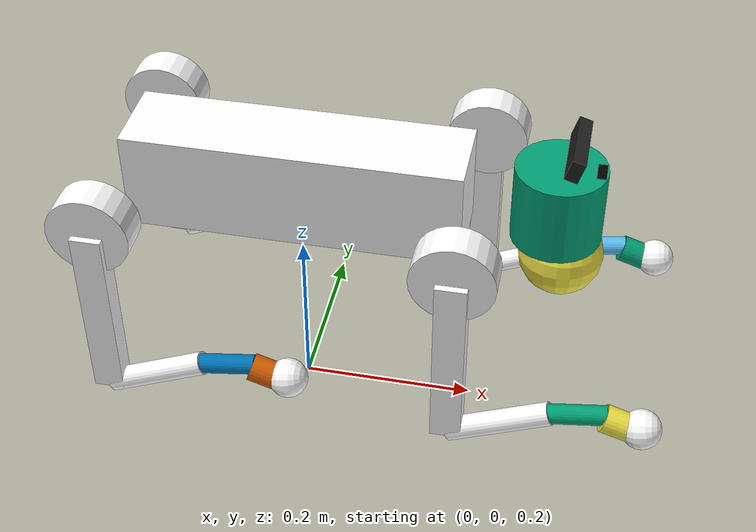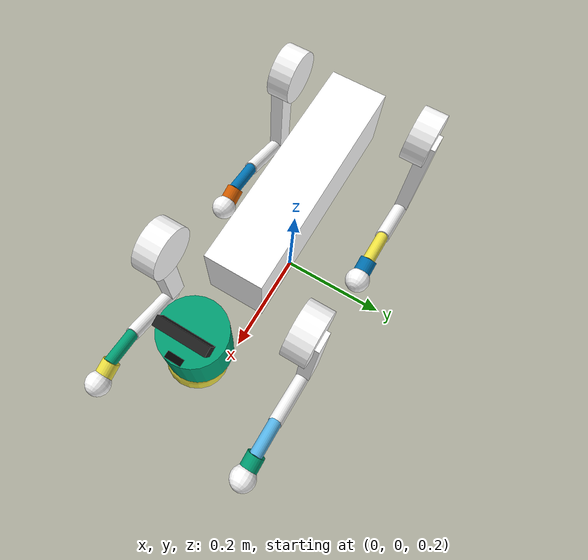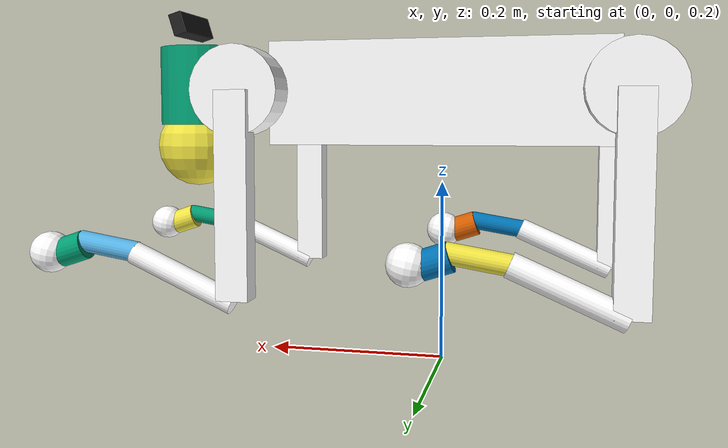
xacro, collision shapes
<?xml version="1.0" encoding="utf-8"?>
<robot name="go2_description" xmlns:xacro="http://ros.org/wiki/xacro">
    <xacro:arg name="namespace" default="" />

    <link name="base_link"></link>

    <joint name="base_joint_link" type="fixed">
        <parent link="base_link"/>
        <child link="base" />
        <origin xyz="0 0 0.5" rpy="0 0 0"/>
    </joint>

  <link
    name="base">
    <inertial>
      <origin
        xyz="0.021112 0 -0.005366"
        rpy="0 0 0" />
      <mass
        value="6.921" />
      <inertia
        ixx="0.02448"
        ixy="0.00012166"
        ixz="0.0014849"
        iyy="0.098077"
        iyz="-3.12E-05"
        izz="0.107" />
    </inertial>
    <visual>
      <origin
        xyz="0 0 0"
        rpy="0 0 0" />
      <geometry>
        <mesh
          filename="package://go2_description/dae/base.dae" />
      </geometry>
      <material
        name="">
        <color
          rgba="1 1 1 1" />
      </material>
    </visual>
    <collision>
      <origin rpy="0 0 0" xyz="0 0 0" />
      <geometry>
        <box size="0.3762 0.0935 0.114" />
      </geometry>
    </collision>
  </link>
  <link
    name="Head_upper">
    <inertial>
      <origin
        xyz="0 0 0"
        rpy="0 0 0" />
      <mass
        value="0.001" />
      <inertia
        ixx="9.6e-06"
        ixy="0"
        ixz="0"
        iyy="9.6e-06"
        iyz="0"
        izz="9.6e-06" />
    </inertial>
    <collision>
      <origin
        xyz="0 0 0"
        rpy="0 0 0" />
      <geometry>
        <cylinder radius="0.05" length="0.09" />
      </geometry>
    </collision>
  </link>
  <joint
    name="Head_upper_joint"
    type="fixed" dont_collapse="true">
    <origin
      xyz="0.285 0 0.01"
      rpy="0 0 0" />
    <parent
      link="base" />
    <child
      link="Head_upper" />
    <axis
      xyz="0 0 0" />
  </joint>
  <link
    name="Head_lower">
    <inertial>
      <origin
        xyz="0 0 0"
        rpy="0 0 0" />
      <mass
        value="0.001" />
      <inertia
        ixx="9.6e-06"
        ixy="0"
        ixz="0"
        iyy="9.6e-06"
        iyz="0"
        izz="9.6e-06" />
    </inertial>
    <collision>
      <origin
        xyz="0 0 0"
        rpy="0 0 0" />
      <geometry>
        <sphere radius="0.047" />
      </geometry>
    </collision>
  </link>
  <joint
    name="Head_lower_joint"
    type="fixed" dont_collapse="true">
    <origin
      xyz="0.008 0 -0.07"
      rpy="0 0 0" />
    <parent
      link="Head_upper" />
    <child
      link="Head_lower" />
    <axis
      xyz="0 0 0" />
  </joint>
  <link
    name="FL_hip">
    <inertial>
      <origin
        xyz="-0.0054 0.00194 -0.000105"
        rpy="0 0 0" />
      <mass
        value="0.678" />
      <inertia
        ixx="0.00048"
        ixy="-3.01E-06"
        ixz="1.11E-06"
        iyy="0.000884"
        iyz="-1.42E-06"
        izz="0.000596" />
    </inertial>
    <visual>
      <origin
        xyz="0 0 0"
        rpy="0 0 0" />
      <geometry>
        <mesh
          filename="package://go2_description/dae/hip.dae" />
      </geometry>
      <material
        name="">
        <color
          rgba="1 1 1 1" />
      </material>
    </visual>
    <collision>
      <origin rpy="1.5707963267948966 0 0" xyz="0 0.08 0" />
      <geometry>
        <cylinder length="0.04" radius="0.046" />
      </geometry>
    </collision>
  </link>
  <joint
    name="FL_hip_joint"
    type="revolute">
    <origin
      xyz="0.1934 0.0465 0"
      rpy="0 0 0" />
    <parent
      link="base" />
    <child
      link="FL_hip" />
    <axis
      xyz="1 0 0" />
    <limit
      lower="-1.0472"
      upper="1.0472"
      effort="23.7"
      velocity="30.1" />
  </joint>
  <link name="FL_hip_rotor">
    <inertial>
      <origin rpy="0 0 0" xyz="0.0 0.0 0.0"/>
      <mass value="0.089"/>
      <inertia ixx="0.000111842" ixy="0.0" ixz="0.0" iyy="0.000059647" iyz="0.0" izz="0.000059647"/>
    </inertial>
  </link>
  <joint name="FL_hip_rotor_joint" type="fixed">
    <origin rpy="0 0 0" xyz="0.11215 0.04675 0"/>
    <parent link="base"/>
    <child link="FL_hip_rotor"/>
  </joint>
  <link
    name="FL_thigh">
    <inertial>
      <origin
        xyz="-0.00374 -0.0223 -0.0327"
        rpy="0 0 0" />
      <mass
        value="1.152" />
      <inertia
        ixx="0.00584"
        ixy="8.72E-05"
        ixz="-0.000289"
        iyy="0.0058"
        iyz="0.000808"
        izz="0.00103" />
    </inertial>
    <visual>
      <origin
        xyz="0 0 0"
        rpy="0 0 0" />
      <geometry>
        <mesh
          filename="package://go2_description/dae/thigh.dae" />
      </geometry>
      <material
        name="">
        <color
          rgba="1 1 1 1" />
      </material>
    </visual>
    <collision>
      <origin rpy="0 1.5707963267948966 0" xyz="0 0 -0.1065" />
      <geometry>
        <box size="0.213 0.0245 0.034" />
      </geometry>
    </collision>
  </link>
  <joint
    name="FL_thigh_joint"
    type="revolute">
    <origin
      xyz="0 0.0955 0"
      rpy="0 0 0" />
    <parent
      link="FL_hip" />
    <child
      link="FL_thigh" />
    <axis
      xyz="0 1 0" />
    <limit
      lower="-1.5708"
      upper="3.4907"
      effort="23.7"
      velocity="30.1" />
  </joint>
  <link name="FL_thigh_rotor">
    <inertial>
      <origin rpy="0 0 0" xyz="0.0 0.0 0.0"/>
      <mass value="0.089"/>
      <inertia ixx="0.000059647" ixy="0.0" ixz="0.0" iyy="0.000111842" iyz="0.0" izz="0.000059647"/>
    </inertial>
  </link>
  <joint name="FL_thigh_rotor_joint" type="fixed">
    <origin rpy="0 0 0" xyz="0 -0.00015 0"/>
    <parent link="FL_hip"/>
    <child link="FL_thigh_rotor"/>
  </joint>
  <link
    name="FL_calf">
    <inertial>
      <origin
        xyz="0.00548 -0.000975 -0.115"
        rpy="0 0 0" />
      <mass
        value="0.154" />
      <inertia
        ixx="0.00108"
        ixy="3.4E-07"
        ixz="1.72E-05"
        iyy="0.0011"
        iyz="8.28E-06"
        izz="3.29E-05" />
    </inertial>
    <visual>
      <origin
        xyz="0 0 0"
        rpy="0 0 0" />
      <geometry>
        <mesh
          filename="package://go2_description/dae/calf.dae" />
      </geometry>
      <material
        name="">
        <color
          rgba="1 1 1 1" />
      </material>
    </visual>
    <collision>
      <origin rpy="0 -0.21 0" xyz="0.008 0 -0.06" />
      <geometry>
        <cylinder length="0.12" radius="0.012" />
      </geometry>
    </collision>
  </link>
  <joint
    name="FL_calf_joint"
    type="revolute">
    <origin
      xyz="0 0 -0.213"
      rpy="0 0 0" />
    <parent
      link="FL_thigh" />
    <child
      link="FL_calf" />
    <axis
      xyz="0 1 0" />
    <limit
      lower="-2.7227"
      upper="-0.83776"
      effort="45.43"
      velocity="15.70" />
  </joint>
  <link
    name="FL_calflower">
    <collision>
      <origin rpy="0 0 0" xyz="0 0 0" />
      <geometry>
        <cylinder length="0.065" radius="0.011" />
      </geometry>
    </collision>
  </link>
  <joint
    name="FL_calflower_joint"
    type="fixed">
    <origin
      xyz="0.020 0 -0.148"
      rpy="0 0.05 0" />
    <parent
      link="FL_calf" />
    <child
      link="FL_calflower" />
    <axis
      xyz="0 0 0" />
  </joint>
  <link
    name="FL_calflower1">
    <collision>
      <origin rpy="0 0 0" xyz="0 0 0" />
      <geometry>
        <cylinder length="0.03" radius="0.0155" />
      </geometry>
    </collision>
  </link>
  <joint
    name="FL_calflower1_joint"
    type="fixed">
    <origin
      xyz="-0.01 0 -0.04"
      rpy="0 0.48 0" />
    <parent
      link="FL_calflower" />
    <child
      link="FL_calflower1" />
    <axis
      xyz="0 0 0" />
  </joint>
  <link name="FL_calf_rotor">
    <inertial>
      <origin rpy="0 0 0" xyz="0.0 0.0 0.0"/>
      <mass value="0.089"/>
      <inertia ixx="0.000059647" ixy="0.0" ixz="0.0" iyy="0.000111842" iyz="0.0" izz="0.000059647"/>
    </inertial>
  </link>
  <joint name="FL_calf_rotor_joint" type="fixed">
    <origin rpy="0 0 0" xyz="0 -0.03235 0"/>
    <parent link="FL_thigh"/>
    <child link="FL_calf_rotor"/>
  </joint>
  <link
    name="FL_foot">
    <inertial>
      <origin
        xyz="0 0 0"
        rpy="0 0 0" />
      <mass
        value="0.04" />
      <inertia
        ixx="9.6e-06"
        ixy="0"
        ixz="0"
        iyy="9.6e-06"
        iyz="0"
        izz="9.6e-06" />
    </inertial>
    <visual>
      <origin
        xyz="0 0 0"
        rpy="0 0 0" />
      <geometry>
        <mesh
          filename="package://go2_description/dae/foot.dae" />
      </geometry>
      <material
        name="">
        <color
          rgba="1 1 1 1" />
      </material>
    </visual>
    <collision>
      <origin rpy="0 0 0" xyz="-0.002 0 0" />
      <geometry>
        <sphere radius="0.022" />
      </geometry>
    </collision>
  </link>
  <joint
    name="FL_foot_joint"
    type="fixed" dont_collapse="true">
    <origin
      xyz="0 0 -0.213"
      rpy="0 0 0" />
    <parent
      link="FL_calf" />
    <child
      link="FL_foot" />
    <axis
      xyz="0 0 0" />
  </joint>
  <link
    name="FR_hip">
    <inertial>
      <origin
        xyz="-0.0054 -0.00194 -0.000105"
        rpy="0 0 0" />
      <mass
        value="0.678" />
      <inertia
        ixx="0.00048"
        ixy="3.01E-06"
        ixz="1.11E-06"
        iyy="0.000884"
        iyz="1.42E-06"
        izz="0.000596" />
    </inertial>
    <visual>
      <origin
        xyz="0 0 0"
        rpy="3.1415 0 0" />
      <geometry>
        <mesh
          filename="package://go2_description/dae/hip.dae" />
      </geometry>
      <material
        name="">
        <color
          rgba="1 1 1 1" />
      </material>
    </visual>
    <collision>
      <origin rpy="1.5707963267948966 0 0" xyz="0 -0.08 0" />
      <geometry>
        <cylinder length="0.04" radius="0.046" />
      </geometry>
    </collision>
  </link>
  <joint
    name="FR_hip_joint"
    type="revolute">
    <origin
      xyz="0.1934 -0.0465 0"
      rpy="0 0 0" />
    <parent
      link="base" />
    <child
      link="FR_hip" />
    <axis
      xyz="1 0 0" />
    <limit
      lower="-1.0472"
      upper="1.0472"
      effort="23.7"
      velocity="30.1" />
  </joint>
  <link name="FR_hip_rotor">
    <inertial>
      <origin rpy="0 0 0" xyz="0.0 0.0 0.0"/>
      <mass value="0.089"/>
      <inertia ixx="0.000111842" ixy="0.0" ixz="0.0" iyy="0.000059647" iyz="0.0" izz="0.000059647"/>
    </inertial>
  </link>
  <joint name="FR_hip_rotor_joint" type="fixed">
    <origin rpy="0 0 0" xyz="0.11215 -0.04675 0"/>
    <parent link="base"/>
    <child link="FR_hip_rotor"/>
  </joint>
  <link
    name="FR_thigh">
    <inertial>
      <origin
        xyz="-0.00374 0.0223 -0.0327"
        rpy="0 0 0" />
      <mass
        value="1.152" />
      <inertia
        ixx="0.00584"
        ixy="-8.72E-05"
        ixz="-0.000289"
        iyy="0.0058"
        iyz="-0.000808"
        izz="0.00103" />
    </inertial>
    <visual>
      <origin
        xyz="0 0 0"
        rpy="0 0 0" />
      <geometry>
        <mesh
          filename="package://go2_description/dae/thigh_mirror.dae" />
      </geometry>
      <material
        name="">
        <color
          rgba="1 1 1 1" />
      </material>
    </visual>
    <collision>
      <origin rpy="0 1.5707963267948966 0" xyz="0 0 -0.1065" />
      <geometry>
        <box size="0.213 0.0245 0.034" />
      </geometry>
    </collision>
  </link>
  <joint
    name="FR_thigh_joint"
    type="revolute">
    <origin
      xyz="0 -0.0955 0"
      rpy="0 0 0" />
    <parent
      link="FR_hip" />
    <child
      link="FR_thigh" />
    <axis
      xyz="0 1 0" />
    <limit
      lower="-1.5708"
      upper="3.4907"
      effort="23.7"
      velocity="30.1" />
  </joint>
  <link name="FR_thigh_rotor">
    <inertial>
      <origin rpy="0 0 0" xyz="0.0 0.0 0.0"/>
      <mass value="0.089"/>
      <inertia ixx="0.000059647" ixy="0.0" ixz="0.0" iyy="0.000111842" iyz="0.0" izz="0.000059647"/>
    </inertial>
  </link>
  <joint name="FR_thigh_rotor_joint" type="fixed">
    <origin rpy="0 0 0" xyz="0 0.00015 0"/>
    <parent link="FR_hip"/>
    <child link="FR_thigh_rotor"/>
  </joint>
  <link
    name="FR_calf">
    <inertial>
      <origin
        xyz="0.00548 0.000975 -0.115"
        rpy="0 0 0" />
      <mass
        value="0.154" />
      <inertia
        ixx="0.00108"
        ixy="-3.4E-07"
        ixz="1.72E-05"
        iyy="0.0011"
        iyz="-8.28E-06"
        izz="3.29E-05" />
    </inertial>
    <visual>
      <origin
        xyz="0 0 0"
        rpy="0 0 0" />
      <geometry>
        <mesh
          filename="package://go2_description/dae/calf_mirror.dae" />
      </geometry>
      <material
        name="">
        <color
          rgba="1 1 1 1" />
      </material>
    </visual>
    <collision>
      <origin rpy="0 -0.2 0" xyz="0.01 0 -0.06" />
      <geometry>
        <cylinder length="0.12" radius="0.013" />
      </geometry>
    </collision>
  </link>
  <joint
    name="FR_calf_joint"
    type="revolute">
    <origin
      xyz="0 0 -0.213"
      rpy="0 0 0" />
    <parent
      link="FR_thigh" />
    <child
      link="FR_calf" />
    <axis
      xyz="0 1 0" />
    <limit
      lower="-2.7227"
      upper="-0.83776"
      effort="45.43"
      velocity="15.70" />
  </joint>
  <link
    name="FR_calflower">
    <collision>
      <origin rpy="0 0 0" xyz="0 0 0" />
      <geometry>
        <cylinder length="0.065" radius="0.011" />
      </geometry>
    </collision>
  </link>
  <joint
    name="FR_calflower_joint"
    type="fixed">
    <origin
      xyz="0.020 0 -0.148"
      rpy="0 0.05 0" />
    <parent
      link="FR_calf" />
    <child
      link="FR_calflower" />
    <axis
      xyz="0 0 0" />
  </joint>
  <link
    name="FR_calflower1">
    <collision>
      <origin rpy="0 0 0" xyz="0 0 0" />
      <geometry>
        <cylinder length="0.03" radius="0.0155" />
      </geometry>
    </collision>
  </link>
  <joint
    name="FR_calflower1_joint"
    type="fixed">
    <origin
      xyz="-0.01 0 -0.04"
      rpy="0 0.48 0" />
    <parent
      link="FR_calflower" />
    <child
      link="FR_calflower1" />
    <axis
      xyz="0 0 0" />
  </joint>
  <link name="FR_calf_rotor">
    <inertial>
      <origin rpy="0 0 0" xyz="0.0 0.0 0.0"/>
      <mass value="0.089"/>
      <inertia ixx="0.000059647" ixy="0.0" ixz="0.0" iyy="0.000111842" iyz="0.0" izz="0.000059647"/>
    </inertial>
  </link>
  <joint name="FR_calf_rotor_joint" type="fixed">
    <origin rpy="0 0 0" xyz="0 0.03235 0"/>
    <parent link="FR_thigh"/>
    <child link="FR_calf_rotor"/>
  </joint>
  <link
    name="FR_foot">
    <inertial>
      <origin
        xyz="0 0 0"
        rpy="0 0 0" />
      <mass
        value="0.04" />
      <inertia
        ixx="9.6e-06"
        ixy="0"
        ixz="0"
        iyy="9.6e-06"
        iyz="0"
        izz="9.6e-06" />
    </inertial>
    <visual>
      <origin
        xyz="0 0 0"
        rpy="0 0 0" />
      <geometry>
        <mesh
          filename="package://go2_description/dae/foot.dae" />
      </geometry>
      <material
        name="">
        <color
          rgba="1 1 1 1" />
      </material>
    </visual>
    <collision>
      <origin rpy="0 0 0" xyz="-0.002 0 0" />
      <geometry>
        <sphere radius="0.022" />
      </geometry>
    </collision>
  </link>
  <joint
    name="FR_foot_joint"
    type="fixed" dont_collapse="true">
    <origin
      xyz="0 0 -0.213"
      rpy="0 0 0" />
    <parent
      link="FR_calf" />
    <child
      link="FR_foot" />
    <axis
      xyz="0 0 0" />
  </joint>
  <link
    name="RL_hip">
    <inertial>
      <origin
        xyz="0.0054 0.00194 -0.000105"
        rpy="0 0 0" />
      <mass
        value="0.678" />
      <inertia
        ixx="0.00048"
        ixy="3.01E-06"
        ixz="-1.11E-06"
        iyy="0.000884"
        iyz="-1.42E-06"
        izz="0.000596" />
    </inertial>
    <visual>
      <origin
        xyz="0 0 0"
        rpy="0 3.1415 0" />
      <geometry>
        <mesh
          filename="package://go2_description/dae/hip.dae" />
      </geometry>
      <material
        name="">
        <color
          rgba="1 1 1 1" />
      </material>
    </visual>
    <collision>
      <origin rpy="1.5707963267948966 0 0" xyz="0 0.08 0" />
      <geometry>
        <cylinder length="0.04" radius="0.046" />
      </geometry>
    </collision>
  </link>
  <joint
    name="RL_hip_joint"
    type="revolute">
    <origin
      xyz="-0.1934 0.0465 0"
      rpy="0 0 0" />
    <parent
      link="base" />
    <child
      link="RL_hip" />
    <axis
      xyz="1 0 0" />
    <limit
      lower="-1.0472"
      upper="1.0472"
      effort="23.7"
      velocity="30.1" />
  </joint>
  <link name="RL_hip_rotor">
    <inertial>
      <origin rpy="0 0 0" xyz="0.0 0.0 0.0"/>
      <mass value="0.089"/>
      <inertia ixx="0.000111842" ixy="0.0" ixz="0.0" iyy="0.000059647" iyz="0.0" izz="0.000059647"/>
    </inertial>
  </link>
  <joint name="RL_hip_rotor_joint" type="fixed">
    <origin rpy="0 0 0" xyz="-0.11215 0.04675 0"/>
    <parent link="base"/>
    <child link="RL_hip_rotor"/>
  </joint>
  <link
    name="RL_thigh">
    <inertial>
      <origin
        xyz="-0.00374 -0.0223 -0.0327"
        rpy="0 0 0" />
      <mass
        value="1.152" />
      <inertia
        ixx="0.00584"
        ixy="8.72E-05"
        ixz="-0.000289"
        iyy="0.0058"
        iyz="0.000808"
        izz="0.00103" />
    </inertial>
    <visual>
      <origin
        xyz="0 0 0"
        rpy="0 0 0" />
      <geometry>
        <mesh
          filename="package://go2_description/dae/thigh.dae" />
      </geometry>
      <material
        name="">
        <color
          rgba="1 1 1 1" />
      </material>
    </visual>
    <collision>
      <origin rpy="0 1.5707963267948966 0" xyz="0 0 -0.1065" />
      <geometry>
        <box size="0.213 0.0245 0.034" />
      </geometry>
    </collision>
  </link>
  <joint
    name="RL_thigh_joint"
    type="revolute">
    <origin
      xyz="0 0.0955 0"
      rpy="0 0 0" />
    <parent
      link="RL_hip" />
    <child
      link="RL_thigh" />
    <axis
      xyz="0 1 0" />
    <limit
      lower="-0.5236"
      upper="4.5379"
      effort="23.7"
      velocity="30.1" />
  </joint>
  <link name="RL_thigh_rotor">
    <inertial>
      <origin rpy="0 0 0" xyz="0.0 0.0 0.0"/>
      <mass value="0.089"/>
      <inertia ixx="0.000059647" ixy="0.0" ixz="0.0" iyy="0.000111842" iyz="0.0" izz="0.000059647"/>
    </inertial>
  </link>
  <joint name="RL_thigh_rotor_joint" type="fixed">
    <origin rpy="0 0 0" xyz="0 -0.00015 0"/>
    <parent link="RL_hip"/>
    <child link="RL_thigh_rotor"/>
  </joint>
  <link
    name="RL_calf">
    <inertial>
      <origin
        xyz="0.00548 -0.000975 -0.115"
        rpy="0 0 0" />
      <mass
        value="0.154" />
      <inertia
        ixx="0.00108"
        ixy="3.4E-07"
        ixz="1.72E-05"
        iyy="0.0011"
        iyz="8.28E-06"
        izz="3.29E-05" />
    </inertial>
    <visual>
      <origin
        xyz="0 0 0"
        rpy="0 0 0" />
      <geometry>
        <mesh
          filename="package://go2_description/dae/calf.dae" />
      </geometry>
      <material
        name="">
        <color
          rgba="1 1 1 1" />
      </material>
    </visual>
    <collision>
      <origin rpy="0 -0.2 0" xyz="0.01 0 -0.06" />
      <geometry>
        <cylinder length="0.12" radius="0.013" />
      </geometry>
    </collision>
  </link>
  <joint
    name="RL_calf_joint"
    type="revolute">
    <origin
      xyz="0 0 -0.213"
      rpy="0 0 0" />
    <parent
      link="RL_thigh" />
    <child
      link="RL_calf" />
    <axis
      xyz="0 1 0" />
    <limit
      lower="-2.7227"
      upper="-0.83776"
      effort="45.43"
      velocity="15.70" />
  </joint>
  <link
    name="RL_calflower">
    <collision>
      <origin rpy="0 0 0" xyz="0 0 0" />
      <geometry>
        <cylinder length="0.065" radius="0.011" />
      </geometry>
    </collision>
  </link>
  <joint
    name="RL_calflower_joint"
    type="fixed">
    <origin
      xyz="0.020 0 -0.148"
      rpy="0 0.05 0" />
    <parent
      link="RL_calf" />
    <child
      link="RL_calflower" />
    <axis
      xyz="0 0 0" />
  </joint>
  <link
    name="RL_calflower1">
    <collision>
      <origin rpy="0 0 0" xyz="0 0 0" />
      <geometry>
        <cylinder length="0.03" radius="0.0155" />
      </geometry>
    </collision>
  </link>
  <joint
    name="RL_calflower1_joint"
    type="fixed">
    <origin
      xyz="-0.01 0 -0.04"
      rpy="0 0.48 0" />
    <parent
      link="RL_calflower" />
    <child
      link="RL_calflower1" />
    <axis
      xyz="0 0 0" />
  </joint>
  <link name="RL_calf_rotor">
    <inertial>
      <origin rpy="0 0 0" xyz="0.0 0.0 0.0"/>
      <mass value="0.089"/>
      <inertia ixx="0.000059647" ixy="0.0" ixz="0.0" iyy="0.000111842" iyz="0.0" izz="0.000059647"/>
    </inertial>
  </link>
  <joint name="RL_calf_rotor_joint" type="fixed">
    <origin rpy="0 0 0" xyz="0 -0.03235 0"/>
    <parent link="RL_thigh"/>
    <child link="RL_calf_rotor"/>
  </joint>
  <link
    name="RL_foot">
    <inertial>
      <origin
        xyz="0 0 0"
        rpy="0 0 0" />
      <mass
        value="0.04" />
      <inertia
        ixx="9.6e-06"
        ixy="0"
        ixz="0"
        iyy="9.6e-06"
        iyz="0"
        izz="9.6e-06" />
    </inertial>
    <visual>
      <origin
        xyz="0 0 0"
        rpy="0 0 0" />
      <geometry>
        <mesh
          filename="package://go2_description/dae/foot.dae" />
      </geometry>
      <material
        name="">
        <color
          rgba="1 1 1 1" />
      </material>
    </visual>
    <collision>
      <origin rpy="0 0 0" xyz="-0.002 0 0" />
      <geometry>
        <sphere radius="0.022" />
      </geometry>
    </collision>
  </link>
  <joint
    name="RL_foot_joint"
    type="fixed" dont_collapse="true">
    <origin
      xyz="0 0 -0.213"
      rpy="0 0 0" />
    <parent
      link="RL_calf" />
    <child
      link="RL_foot" />
    <axis
      xyz="0 0 0" />
  </joint>
  <link
    name="RR_hip">
    <inertial>
      <origin
        xyz="0.0054 -0.00194 -0.000105"
        rpy="0 0 0" />
      <mass
        value="0.678" />
      <inertia
        ixx="0.00048"
        ixy="-3.01E-06"
        ixz="-1.11E-06"
        iyy="0.000884"
        iyz="1.42E-06"
        izz="0.000596" />
    </inertial>
    <visual>
      <origin
        xyz="0 0 0"
        rpy="3.1415 3.1415 0" />
      <geometry>
        <mesh
          filename="package://go2_description/dae/hip.dae" />
      </geometry>
      <material
        name="">
        <color
          rgba="1 1 1 1" />
      </material>
    </visual>
    <collision>
      <origin rpy="1.5707963267948966 0 0" xyz="0 -0.08 0" />
      <geometry>
        <cylinder length="0.04" radius="0.046" />
      </geometry>
    </collision>
  </link>
  <joint
    name="RR_hip_joint"
    type="revolute">
    <origin
      xyz="-0.1934 -0.0465 0"
      rpy="0 0 0" />
    <parent
      link="base" />
    <child
      link="RR_hip" />
    <axis
      xyz="1 0 0" />
    <limit
      lower="-1.0472"
      upper="1.0472"
      effort="23.7"
      velocity="30.1" />
  </joint>
  <link name="RR_hip_rotor">
    <inertial>
      <origin rpy="0 0 0" xyz="0.0 0.0 0.0"/>
      <mass value="0.089"/>
      <inertia ixx="0.000111842" ixy="0.0" ixz="0.0" iyy="0.000059647" iyz="0.0" izz="0.000059647"/>
    </inertial>
  </link>
  <joint name="RR_hip_rotor_joint" type="fixed">
    <origin rpy="0 0 0" xyz="-0.11215 -0.04675 0"/>
    <parent link="base"/>
    <child link="RR_hip_rotor"/>
  </joint>
  <link
    name="RR_thigh">
    <inertial>
      <origin
        xyz="-0.00374 0.0223 -0.0327"
        rpy="0 0 0" />
      <mass
        value="1.152" />
      <inertia
        ixx="0.00584"
        ixy="-8.72E-05"
        ixz="-0.000289"
        iyy="0.0058"
        iyz="-0.000808"
        izz="0.00103" />
    </inertial>
    <visual>
      <origin
        xyz="0 0 0"
        rpy="0 0 0" />
      <geometry>
        <mesh
          filename="package://go2_description/dae/thigh_mirror.dae" />
      </geometry>
      <material
        name="">
        <color
          rgba="1 1 1 1" />
      </material>
    </visual>
    <collision>
      <origin rpy="0 1.5707963267948966 0" xyz="0 0 -0.1065" />
      <geometry>
        <box size="0.213 0.0245 0.034" />
      </geometry>
    </collision>
  </link>
  <joint
    name="RR_thigh_joint"
    type="revolute">
    <origin
      xyz="0 -0.0955 0"
      rpy="0 0 0" />
    <parent
      link="RR_hip" />
    <child
      link="RR_thigh" />
    <axis
      xyz="0 1 0" />
    <limit
      lower="-0.5236"
      upper="4.5379"
      effort="23.7"
      velocity="30.1" />
  </joint>
  <link name="RR_thigh_rotor">
    <inertial>
      <origin rpy="0 0 0" xyz="0.0 0.0 0.0"/>
      <mass value="0.089"/>
      <inertia ixx="0.000059647" ixy="0.0" ixz="0.0" iyy="0.000111842" iyz="0.0" izz="0.000059647"/>
    </inertial>
  </link>
  <joint name="RR_thigh_rotor_joint" type="fixed">
    <origin rpy="0 0 0" xyz="0 0.00015 0"/>
    <parent link="RR_hip"/>
    <child link="RR_thigh_rotor"/>
  </joint>
  <link
    name="RR_calf">
    <inertial>
      <origin
        xyz="0.00548 0.000975 -0.115"
        rpy="0 0 0" />
      <mass
        value="0.154" />
      <inertia
        ixx="0.00108"
        ixy="-3.4E-07"
        ixz="1.72E-05"
        iyy="0.0011"
        iyz="-8.28E-06"
        izz="3.29E-05" />
    </inertial>
    <visual>
      <origin
        xyz="0 0 0"
        rpy="0 0 0" />
      <geometry>
        <mesh
          filename="package://go2_description/dae/calf_mirror.dae" />
      </geometry>
      <material
        name="">
        <color
          rgba="1 1 1 1" />
      </material>
    </visual>
    <collision>
      <origin rpy="0 -0.2 0" xyz="0.01 0 -0.06" />
      <geometry>
        <cylinder length="0.12" radius="0.013" />
      </geometry>
    </collision>
  </link>
  <joint
    name="RR_calf_joint"
    type="revolute">
    <origin
      xyz="0 0 -0.213"
      rpy="0 0 0" />
    <parent
      link="RR_thigh" />
    <child
      link="RR_calf" />
    <axis
      xyz="0 1 0" />
    <limit
      lower="-2.7227"
      upper="-0.83776"
      effort="45.43"
      velocity="15.70" />
  </joint>
  <link
    name="RR_calflower">
    <collision>
      <origin rpy="0 0 0" xyz="0 0 0" />
      <geometry>
        <cylinder length="0.065" radius="0.011" />
      </geometry>
    </collision>
  </link>
  <joint
    name="RR_calflower_joint"
    type="fixed">
    <origin
      xyz="0.020 0 -0.148"
      rpy="0 0.05 0" />
    <parent
      link="RR_calf" />
    <child
      link="RR_calflower" />
    <axis
      xyz="0 0 0" />
  </joint>
  <link
    name="RR_calflower1">
    <collision>
      <origin rpy="0 0 0" xyz="0 0 0" />
      <geometry>
        <cylinder length="0.03" radius="0.0155" />
      </geometry>
    </collision>
  </link>
  <joint
    name="RR_calflower1_joint"
    type="fixed">
    <origin
      xyz="-0.01 0 -0.04"
      rpy="0 0.48 0" />
    <parent
      link="RR_calflower" />
    <child
      link="RR_calflower1" />
    <axis
      xyz="0 0 0" />
  </joint>
  <link name="RR_calf_rotor">
    <inertial>
      <origin rpy="0 0 0" xyz="0.0 0.0 0.0"/>
      <mass value="0.089"/>
      <inertia ixx="0.000059647" ixy="0.0" ixz="0.0" iyy="0.000111842" iyz="0.0" izz="0.000059647"/>
    </inertial>
  </link>
  <joint name="RR_calf_rotor_joint" type="fixed">
    <origin rpy="0 0 0" xyz="0 0.03235 0"/>
    <parent link="RR_thigh"/>
    <child link="RR_calf_rotor"/>
  </joint>
  <link
    name="RR_foot">
    <inertial>
      <origin
        xyz="0 0 0"
        rpy="0 0 0" />
      <mass
        value="0.04" />
      <inertia
        ixx="9.6e-06"
        ixy="0"
        ixz="0"
        iyy="9.6e-06"
        iyz="0"
        izz="9.6e-06" />
    </inertial>
    <visual>
      <origin
        xyz="0 0 0"
        rpy="0 0 0" />
      <geometry>
        <mesh
          filename="package://go2_description/dae/foot.dae" />
      </geometry>
      <material
        name="">
        <color
          rgba="1 1 1 1" />
      </material>
    </visual>
    <collision>
      <origin rpy="0 0 0" xyz="-0.002 0 0" />
      <geometry>
        <sphere radius="0.022" />
      </geometry>
    </collision>
  </link>
  <joint
    name="RR_foot_joint"
    type="fixed" dont_collapse="true">
    <origin
      xyz="0 0 -0.213"
      rpy="0 0 0" />
    <parent
      link="RR_calf" />
    <child
      link="RR_foot" />
    <axis
      xyz="0 0 0" />
  </joint>
  <link
    name="imu">
    <inertial>
      <origin
        xyz="0 0 0"
        rpy="0 0 0" />
      <mass
        value="0" />
      <inertia
        ixx="0"
        ixy="0"
        ixz="0"
        iyy="0"
        iyz="0"
        izz="0" />
    </inertial>
  </link>
  <joint
    name="imu_joint"
    type="fixed">
    <origin
      xyz="-0.02557 0 0.04232"
      rpy="0 0 0" />
    <parent
      link="base" />
    <child
      link="imu" />
    <axis
      xyz="0 0 0" />
  </joint>
  <link
    name="radar">
    <inertial>
      <origin
        xyz="0 0 0"
        rpy="0 0 0" />
      <mass
        value="0" />
      <inertia
        ixx="0"
        ixy="0"
        ixz="0"
        iyy="0"
        iyz="0"
        izz="0" />
    </inertial>
  </link>
  <joint
    name="radar_joint"
    type="fixed">
    <origin
      xyz="0.28945 0 -0.046825"
      rpy="0 2.8782 0" />
    <parent
      link="base" />
    <child
      link="radar" />
    <axis
      xyz="0 0 0" />
  </joint>

  <joint
    name="front_camera_joint"
    type="fixed">
    <origin
      rpy="0 0 0"
      xyz="0.32715 -0.00003 0.04297"/>
      <parent
        link="base"/>
      <child
      link="front_camera"/>
  </joint>
  <link name="front_camera">
        <visual>
        <origin xyz="0 0 0.0" rpy="0 0 0"/>
            <geometry>
                <box size="0.010 0.025 0.025"/>
            </geometry>
        <material name="black">
          <color rgba="0.0 0.0 0.0 1.0"/>
        </material>
        </visual>
        <collision>
        <origin xyz="0 0 0.0" rpy="0 0 0"/>
            <geometry>
                <box size="0.010 0.025 0.025"/>
            </geometry>
      <material name="black">
        <color rgba="0.0 0.0 0.0 1.0"/>
      </material>
        </collision>

  </link>

    <joint name="camera_optical_joint" type="fixed">
        <parent link="front_camera"/>
        <child link="camera_link_optical"/>
        <origin xyz="0 0 0" rpy="0 0 0"/>
    </joint>

    <link name="camera_link_optical">
      <material name="black">
        <color rgba="0.0 0.0 0.0 1.0"/>
      </material>
    <visual>
      <origin xyz="0 0 0" rpy="0 0 0"/>
      <geometry>
        <box size="0.01 0.01 0.01"/>
      </geometry>
    </visual>

    <collision>
      <origin xyz="0 0 0" rpy="0 0 0"/>
      <geometry>
        <box size="0.01 0.01 0.01"/>
      </geometry>
    </collision>

    </link>

<joint name="depth_camera_joint" type="fixed">
    <parent link="base"/>
    <child link="depth_camera_link"/>
    <origin xyz="0.3 -0.00003 0.08" rpy="0 0.3 0"/>
</joint>

<link name="depth_camera_link">
      <material name="black">
        <color rgba="0.0 0.0 0.0 1.0"/>
      </material>
    <visual>
        <geometry>
            <box size="0.015 0.08 0.025"/>
        </geometry>
    </visual>
    <collision>
        <geometry>
            <box size="0.015 0.08 0.025"/>
        </geometry>
    </collision>
</link>

<joint name="base_scan_joint" type="fixed">
    <parent link="Head_lower"/>
    <child link="base_scan"/>
    <origin xyz="0 0 0" rpy="0 0 0"/>
</joint>

<link name="base_scan">
      <material name="black">
        <color rgba="0.0 0.0 0.0 1.0"/>
      </material>
    <visual>
        <geometry>
            <box size="0.001 0.001 0.001"/>
        </geometry>
    </visual>
    <collision>
        <geometry>
            <box size="0.001 0.001 0.001"/>
        </geometry>
    </collision>
</link>

    <gazebo reference="front_camera">
        <material>Gazebo/Black</material>

        <sensor name="go2_camera" type="camera">
            <pose> 0 0 0 0 0 0 </pose>
            <visualize>true</visualize>
            <update_rate>10</update_rate>
            <camera>
                <camera_info_topic>go2_camera/camera_info</camera_info_topic>
                <horizontal_fov>1.089</horizontal_fov>
                <image>
                    <format>R8G8B8</format>
                    <width>640</width>
                    <height>480</height>
                </image>
                <clip>
                    <near>0.05</near>
                    <far>8.0</far>
                </clip>
                <noise>
                    <type>gaussian</type>
                    <mean>0.0</mean>
                    <stddev>0.007</stddev>
                </noise>
            </camera>
            <topic>go2_camera/image_raw</topic>
            <gz_frame_id>camera_link_optical</gz_frame_id>
        </sensor>
    </gazebo>

<gazebo reference="depth_camera_link">
    <material>Gazebo/Black</material>

    <sensor name="go2_depth_camera" type="depth">
        <pose>0 0 0 0 0 0</pose>
        <visualize>true</visualize>
        <update_rate>10</update_rate>

        <camera>
            <depthImageTopicName>/go2_camera/depth/image_raw</depthImageTopicName>
            <depthImageCameraInfoTopicName>/go2_camera/depth/camera_info</depthImageCameraInfoTopicName>
            <pointCloudTopicName>/go2_camera/depth/points</pointCloudTopicName>

            <horizontal_fov>1.089</horizontal_fov>
            <image>
                <format>R8G8B8</format>
                <width>640</width>
                <height>480</height>
            </image>
            <clip>
                <near>0.05</near>
                <far>8.0</far>
            </clip>
            <noise>
                <type>gaussian</type>
                <mean>0.0</mean>
                <stddev>0.007</stddev>
            </noise>
        </camera>
    </sensor>
</gazebo>

<gazebo reference="base_scan" >
  <selfCollide>false</selfCollide>
    <material>Gazebo/Black</material>
    <mu1 value="0.05" />
    <mu2 value="0.05" />
  <sensor name="base_scan" type="gpu_lidar">
    <gz_frame_id>base_scan</gz_frame_id>
    <topic>go2/scan</topic>
    <update_rate>30</update_rate>
    <lidar>
      <scan>
        <horizontal>
          <samples>2800</samples>
          <resolution>1</resolution>
          <min_angle>-3.14</min_angle>
          <max_angle>3.14</max_angle>
        </horizontal>
        <vertical>
          <samples>1</samples>
          <resolution>0.1</resolution>
          <min_angle>0.0</min_angle>
          <max_angle>0.0</max_angle>
        </vertical>
      </scan>
      <range>
        <min>0.2</min>
        <max>30.0</max>
        <resolution>0.01</resolution>
      </range>
      <frame_id>/base_scan</frame_id>
      </lidar>
    <alwaysOn>true</alwaysOn>
    <visualize>true</visualize>
  </sensor>
</gazebo>

   <gazebo>

      <plugin filename="ignition-gazebo-sensors-system" name="ignition::gazebo::systems::Sensors">
        <render_engine>ogre2</render_engine>
      </plugin>

    </gazebo>

</robot>
